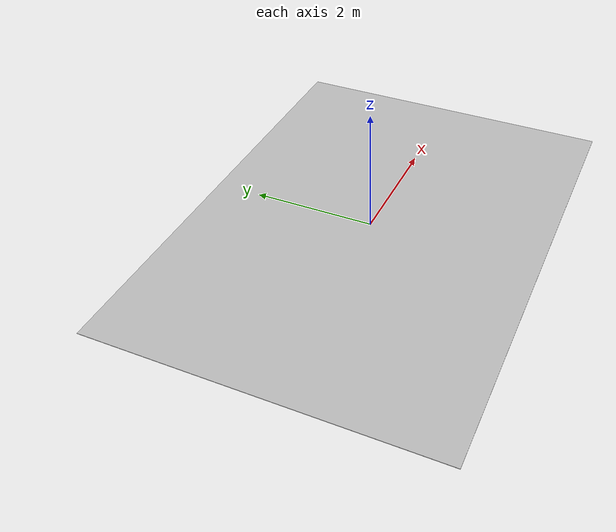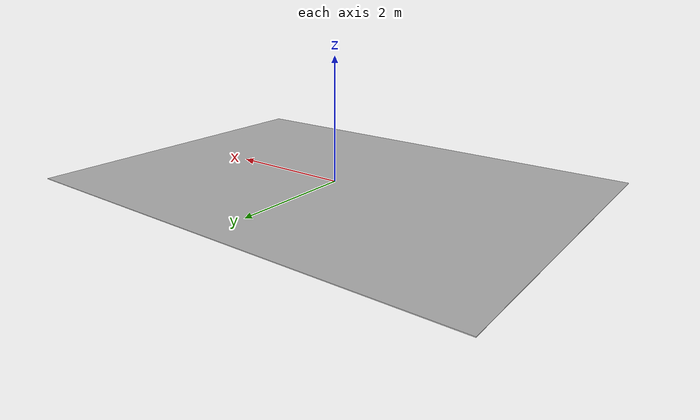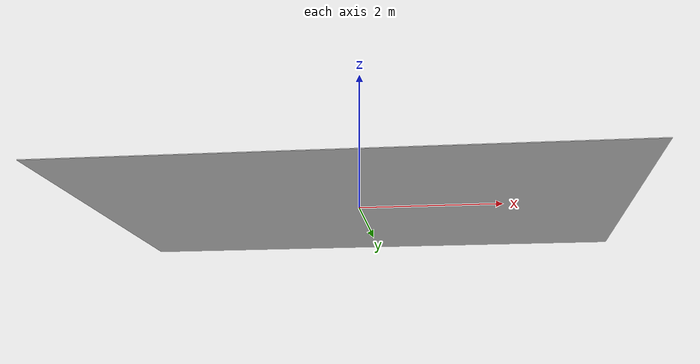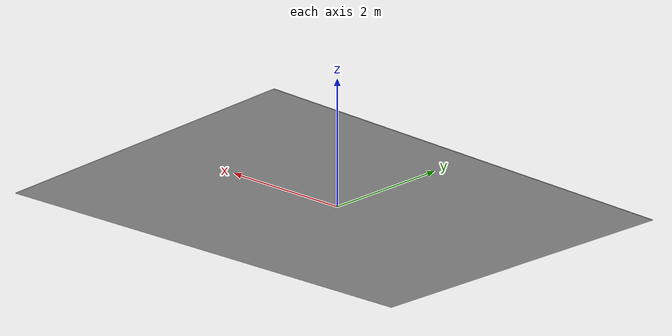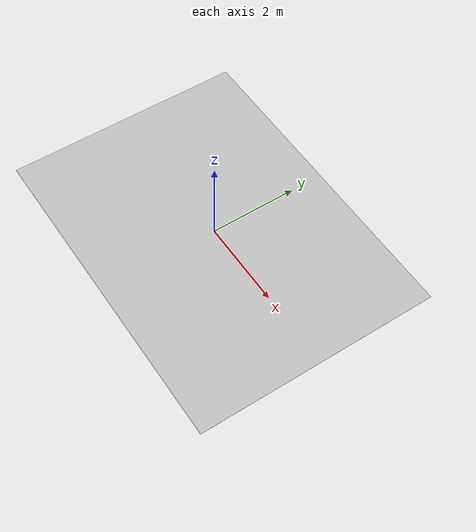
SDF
<?xml version="1.0" ?>
<sdf version="1.4">
  <model name="FIRA_Ground">
    <pose>0 0 0  0 0 0</pose>
     <static>true</static>
    <link name="link">
      <collision name="collision">
        <geometry>
          <mesh>
            <uri>model://fira_ground/meshes/FIRAGround.DAE</uri>
          </mesh>
        </geometry>
      </collision>
      <visual name="visual">
        <geometry>
          <mesh>
            <uri>model://fira_ground/meshes/FIRAGround.DAE</uri>
          </mesh>
        </geometry>
      </visual>
    </link>
  </model>
</sdf>
